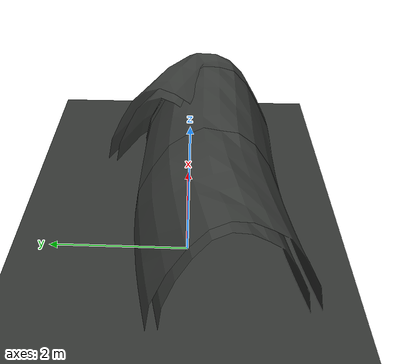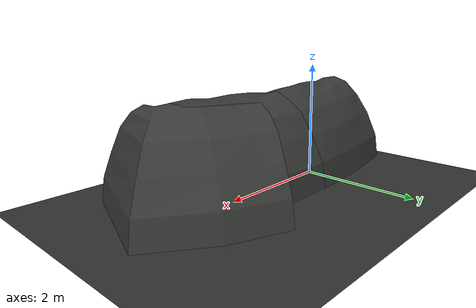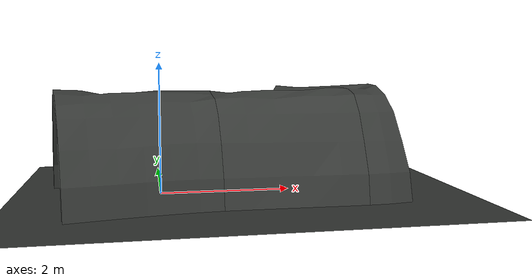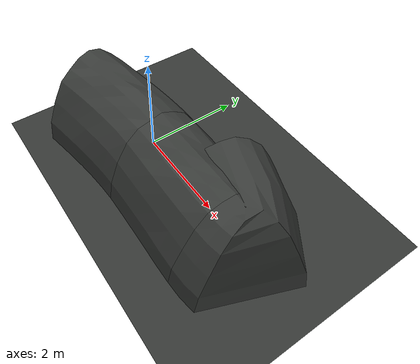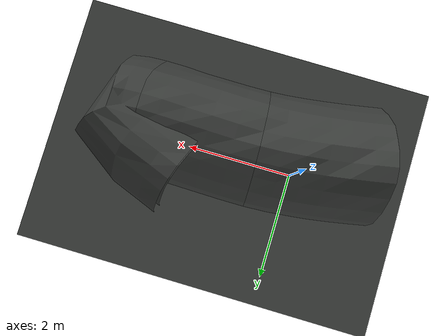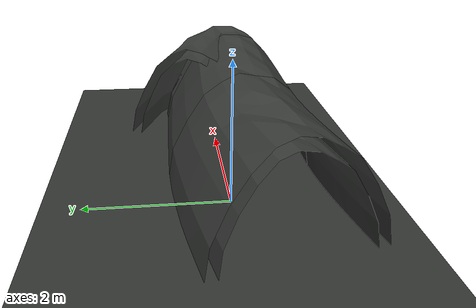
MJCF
<?xml version="1.0" encoding="utf-8"?>
<!--
  Cave Search-and-Rescue Environment  — MuJoCo SAR Training Scene
  Generated by cave_simulation_system.py
  Entry (1.9, 0.4) → Exit (-1.4, -0.6)
-->
<mujoco model="cave_sar">

  <compiler angle="degree" meshdir="meshes/" autolimits="true"/>

  <option gravity="0 0 -9.81" timestep="0.002" integrator="RK4" cone="pyramidal"/>

  <visual>
    <headlight ambient="0.18 0.18 0.17" diffuse="0.48 0.45 0.38" specular="0.05 0.05 0.05"/>
    <rgba haze="0.06 0.05 0.04 1"/>
    <quality shadowsize="4096"/>
    <map stiffness="100" shadowscale="0.4"/>
    <global fovy="65"/>
  </visual>

  <asset>
    <mesh name="cave_inner_main_00" file="cave_inner_main_00.stl" scale="1 1 1"/>
    <mesh name="cave_inner_main_01" file="cave_inner_main_01.stl" scale="1 1 1"/>
    <mesh name="cave_inner_main_02" file="cave_inner_main_02.stl" scale="1 1 1"/>
    <mesh name="cave_outer_main_00" file="cave_outer_main_00.stl" scale="1 1 1"/>
    <mesh name="cave_outer_main_01" file="cave_outer_main_01.stl" scale="1 1 1"/>
    <mesh name="cave_outer_main_02" file="cave_outer_main_02.stl" scale="1 1 1"/>

    <material name="cave_stone_dark" rgba="0.22 0.23 0.22 1.0" specular="0.05" shininess="0.015" reflectance="0.01"/>
    <material name="cave_stone_warm" rgba="0.33 0.31 0.27 1.0" specular="0.06" shininess="0.018" reflectance="0.01"/>
    <material name="cave_stone_green" rgba="0.25 0.29 0.25 1.0" specular="0.04" shininess="0.012" reflectance="0.01"/>
    <material name="cave_stone_slate" rgba="0.28 0.30 0.32 1.0" specular="0.05" shininess="0.014" reflectance="0.01"/>
    <material name="cave_stone_damp" rgba="0.16 0.17 0.16 1.0" specular="0.03" shininess="0.010" reflectance="0.01"/>
    <material name="cave_stone_olive" rgba="0.29 0.28 0.21 1.0" specular="0.04" shininess="0.012" reflectance="0.01"/>
    <material name="cave_floor"
      rgba="0.20 0.21 0.20 1.0" specular="0.025" shininess="0.006"/>

    <texture type="skybox" builtin="flat"
      rgb1="0.03 0.03 0.05" rgb2="0.01 0.01 0.02"
      width="512" height="512"/>
  </asset>

  <worldbody>

    <!-- ── Cave interior lighting ────────────────────────────────── -->
    <light name="fill_0"
      pos="3.2 -0.3 1.2"
      diffuse="0.958 0.657 0.547"
      castshadow="false"/>
    <light name="fill_1"
      pos="1.6 -0.3 1.2"
      diffuse="0.922 0.631 0.524"
      castshadow="false"/>
    <light name="fill_2"
      pos="-0.0 -0.4 1.2"
      diffuse="0.854 0.583 0.485"
      castshadow="false"/>
    <light name="fill_3"
      pos="2.7 0.0 1.2"
      diffuse="1.068 0.728 0.602"
      castshadow="false"/>

    <!-- ── Ground plane ─────────────────────────────────────────── -->
        <geom name="ground" type="plane"
            pos="0 0 0.000" size="12.0 12.0 0.1"
      material="cave_floor"
      contype="1" conaffinity="1"
      friction="1.0 0.005 0.0001"/>

    <!-- ── Cave wall sections (collision + solid dark-grey visual) ─── -->
    <geom name="cave_inner_main_00" type="mesh" mesh="cave_inner_main_00" material="cave_stone_dark" contype="1" conaffinity="1" friction="0.85 0.005 0.0001"/>
    <geom name="cave_inner_main_01" type="mesh" mesh="cave_inner_main_01" material="cave_stone_dark" contype="1" conaffinity="1" friction="0.85 0.005 0.0001"/>
    <geom name="cave_inner_main_02" type="mesh" mesh="cave_inner_main_02" material="cave_stone_dark" contype="1" conaffinity="1" friction="0.85 0.005 0.0001"/>
    <geom name="cave_outer_main_00" type="mesh" mesh="cave_outer_main_00" material="cave_stone_dark" contype="0" conaffinity="0" friction="0.85 0.005 0.0001"/>
    <geom name="cave_outer_main_01" type="mesh" mesh="cave_outer_main_01" material="cave_stone_dark" contype="0" conaffinity="0" friction="0.85 0.005 0.0001"/>
    <geom name="cave_outer_main_02" type="mesh" mesh="cave_outer_main_02" material="cave_stone_dark" contype="0" conaffinity="0" friction="0.85 0.005 0.0001"/>

    <!-- ── Rock obstacles ───────────────────────────────────────── -->

    <!-- ── Survivors ────────────────────────────────────────────── -->
  <!-- Survivor 0: lying, vis=high, occ=10% -->
  <body name="survivor_0" pos="0.752 -0.444 0.016">
    <geom name="surv0_torso" type="capsule" pos="0.0000 0.0000 0.0423" size="0.0423 0.1788" euler="90.0000 0.0000 33.9038" rgba="0.95 0.95 0.95 1.0" contype="0" conaffinity="0"/>
    <geom name="surv0_head" type="sphere" pos="-0.0580 0.0863 0.0585" size="0.0358" euler="0.0000 0.0000 33.9038" rgba="0.95 0.95 0.95 1.0" contype="0" conaffinity="0"/>
    <geom name="surv0_upper_arm_L" type="capsule" pos="0.0620 0.0417 0.0228" size="0.0163 0.0910" euler="90.0000 0.0000 33.9038" rgba="0.95 0.95 0.95 1.0" contype="0" conaffinity="0"/>
    <geom name="surv0_upper_arm_R" type="capsule" pos="-0.0620 -0.0417 0.0228" size="0.0163 0.0910" euler="90.0000 0.0000 33.9038" rgba="0.95 0.95 0.95 1.0" contype="0" conaffinity="0"/>
    <geom name="surv0_lower_arm_L" type="capsule" pos="0.1128 -0.0338 0.0228" size="0.0130 0.0780" euler="90.0000 0.0000 33.9038" rgba="0.95 0.95 0.95 1.0" contype="0" conaffinity="0"/>
    <geom name="surv0_lower_arm_R" type="capsule" pos="-0.0113 -0.1172 0.0228" size="0.0130 0.0780" euler="90.0000 0.0000 33.9038" rgba="0.95 0.95 0.95 1.0" contype="0" conaffinity="0"/>
    <geom name="surv0_thigh_L" type="capsule" pos="0.0904 -0.0763 0.0228" size="0.0228 0.1300" euler="90.0000 0.0000 33.9038" rgba="0.95 0.95 0.95 1.0" contype="0" conaffinity="0"/>
    <geom name="surv0_thigh_R" type="capsule" pos="0.0365 -0.1125 0.0228" size="0.0228 0.1300" euler="90.0000 0.0000 33.9038" rgba="0.95 0.95 0.95 1.0" contype="0" conaffinity="0"/>
    <geom name="surv0_shin_L" type="capsule" pos="0.1684 -0.1923 0.0228" size="0.0163 0.1170" euler="90.0000 0.0000 33.9038" rgba="0.95 0.95 0.95 1.0" contype="0" conaffinity="0"/>
    <geom name="surv0_shin_R" type="capsule" pos="0.1144 -0.2285 0.0228" size="0.0163 0.1170" euler="90.0000 0.0000 33.9038" rgba="0.95 0.95 0.95 1.0" contype="0" conaffinity="0"/>
  </body>
  <!-- Survivor 1: slumped, vis=high, occ=15% -->
  <body name="survivor_1" pos="1.167 -0.161 0.049">
    <geom name="surv1_torso" type="capsule" pos="0.0000 0.0000 0.0715" size="0.0423 0.0910" euler="40.0000 0.0000 46.1209" rgba="0.95 0.95 0.95 1.0" contype="0" conaffinity="0"/>
    <geom name="surv1_head" type="sphere" pos="-0.0862 0.0604 0.1463" size="0.0358" euler="0.0000 0.0000 46.1209" rgba="0.95 0.95 0.95 1.0" contype="0" conaffinity="0"/>
    <geom name="surv1_upper_arm_L" type="capsule" pos="0.0209 0.1061 0.1235" size="0.0163 0.0910" euler="60.0000 15.0000 46.1209" rgba="0.95 0.95 0.95 1.0" contype="0" conaffinity="0"/>
    <geom name="surv1_upper_arm_R" type="capsule" pos="-0.0446 -0.0698 0.0650" size="0.0163 0.0910" euler="80.0000 -5.0000 46.1209" rgba="0.95 0.95 0.95 1.0" contype="0" conaffinity="0"/>
    <geom name="surv1_lower_arm_L" type="capsule" pos="0.0056 0.1840 0.0455" size="0.0130 0.0715" euler="90.0000 10.0000 46.1209" rgba="0.95 0.95 0.95 1.0" contype="0" conaffinity="0"/>
    <geom name="surv1_lower_arm_R" type="capsule" pos="0.0207 -0.1191 0.0260" size="0.0130 0.0715" euler="90.0000 -8.0000 46.1209" rgba="0.95 0.95 0.95 1.0" contype="0" conaffinity="0"/>
    <geom name="surv1_thigh_L" type="capsule" pos="0.0739 -0.0169 0.0325" size="0.0228 0.1235" euler="80.0000 8.0000 46.1209" rgba="0.95 0.95 0.95 1.0" contype="0" conaffinity="0"/>
    <geom name="surv1_thigh_R" type="capsule" pos="-0.0036 -0.0506 0.0325" size="0.0228 0.1235" euler="75.0000 -5.0000 46.1209" rgba="0.95 0.95 0.95 1.0" contype="0" conaffinity="0"/>
    <geom name="surv1_shin_L" type="capsule" pos="0.1856 -0.0883 0.0260" size="0.0163 0.1105" euler="90.0000 0.0000 46.1209" rgba="0.95 0.95 0.95 1.0" contype="0" conaffinity="0"/>
    <geom name="surv1_shin_R" type="capsule" pos="0.0991 -0.1314 0.0260" size="0.0163 0.1105" euler="90.0000 0.0000 46.1209" rgba="0.95 0.95 0.95 1.0" contype="0" conaffinity="0"/>
  </body>
  <!-- Survivor 2: slumped, vis=high, occ=15% -->
  <body name="survivor_2" pos="2.050 -0.466 0.049">
    <geom name="surv2_torso" type="capsule" pos="0.0000 0.0000 0.0715" size="0.0423 0.0910" euler="40.0000 0.0000 296.1942" rgba="0.95 0.95 0.95 1.0" contype="0" conaffinity="0"/>
    <geom name="surv2_head" type="sphere" pos="0.0861 0.0605 0.1463" size="0.0358" euler="0.0000 0.0000 296.1942" rgba="0.95 0.95 0.95 1.0" contype="0" conaffinity="0"/>
    <geom name="surv2_upper_arm_L" type="capsule" pos="0.0927 -0.0558 0.1235" size="0.0163 0.0910" euler="60.0000 15.0000 296.1942" rgba="0.95 0.95 0.95 1.0" contype="0" conaffinity="0"/>
    <geom name="surv2_upper_arm_R" type="capsule" pos="-0.0504 0.0657 0.0650" size="0.0163 0.0910" euler="80.0000 -5.0000 296.1942" rgba="0.95 0.95 0.95 1.0" contype="0" conaffinity="0"/>
    <geom name="surv2_lower_arm_L" type="capsule" pos="0.1711 -0.0680 0.0455" size="0.0130 0.0715" euler="90.0000 10.0000 296.1942" rgba="0.95 0.95 0.95 1.0" contype="0" conaffinity="0"/>
    <geom name="surv2_lower_arm_R" type="capsule" pos="-0.1190 0.0211 0.0260" size="0.0130 0.0715" euler="90.0000 -8.0000 296.1942" rgba="0.95 0.95 0.95 1.0" contype="0" conaffinity="0"/>
    <geom name="surv2_thigh_L" type="capsule" pos="-0.0411 -0.0637 0.0325" size="0.0228 0.1235" euler="80.0000 8.0000 296.1942" rgba="0.95 0.95 0.95 1.0" contype="0" conaffinity="0"/>
    <geom name="surv2_thigh_R" type="capsule" pos="-0.0464 0.0206 0.0325" size="0.0228 0.1235" euler="75.0000 -5.0000 296.1942" rgba="0.95 0.95 0.95 1.0" contype="0" conaffinity="0"/>
    <geom name="surv2_shin_L" type="capsule" pos="-0.1463 -0.1444 0.0260" size="0.0163 0.1105" euler="90.0000 0.0000 296.1942" rgba="0.95 0.95 0.95 1.0" contype="0" conaffinity="0"/>
    <geom name="surv2_shin_R" type="capsule" pos="-0.1573 -0.0484 0.0260" size="0.0163 0.1105" euler="90.0000 0.0000 296.1942" rgba="0.95 0.95 0.95 1.0" contype="0" conaffinity="0"/>
  </body>

    <!-- ── Robot / camera body ──────────────────────────────────── -->
    <!--  Replace with your full humanoid MJCF.                       -->
    <body name="robot" pos="2.735 0.033 0.087">
      <freejoint name="robot_root"/>
      <geom name="robot_body" type="box"
        size="0.28 0.38 0.14" rgba="0.20 0.50 0.80 1.0"
        mass="5.0" contype="1" conaffinity="1"/>
      <site name="imu_site"   pos="0 0  0.15"  size="0.01"/>
      <site name="lidar_site" pos="0 0.37 0.04" size="0.01"/>
      <light name="robot_headlamp"
        pos="0 0.42 0.58"
        dir="0 1 -0.18"
        diffuse="1.35 1.20 0.92"
        specular="0.10 0.10 0.08"
        directional="true"
        castshadow="false"/>
      <light name="robot_soft_fill"
        pos="0 0.15 0.85"
        diffuse="0.50 0.44 0.34"
        castshadow="false"/>
      <!-- Robot-eye camera — used by dataset renderer -->
      <camera name="robot_cam"
        pos="0 0.35 0.30"
        xyaxes="1 0 0 0 0 1"
        fovy="80"/>
    </body>

  </worldbody>

  <sensor>
    <accelerometer name="accel"      site="imu_site"/>
    <gyro          name="gyro"       site="imu_site"/>
    <magnetometer  name="mag"        site="imu_site"/>
    <rangefinder   name="range_front" site="lidar_site"/>
    <framepos      name="pos_sensor" objtype="site" objname="imu_site"/>
  </sensor>

  <keyframe>
    <key name="spawn_entry"
         qpos="2.735 0.033 0.087  1 0 0 0"/>
  </keyframe>

</mujoco>
